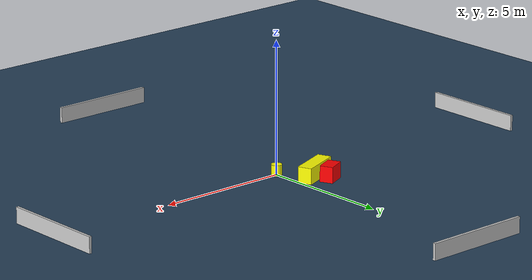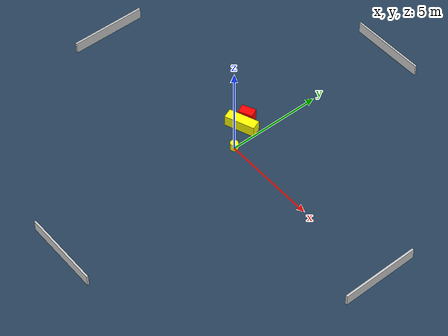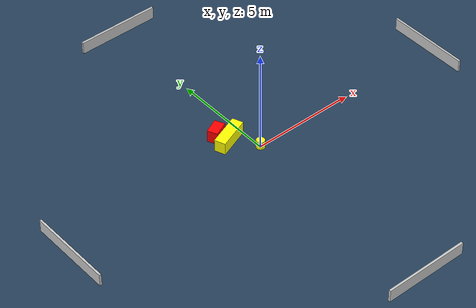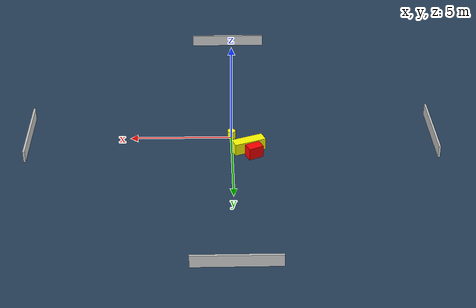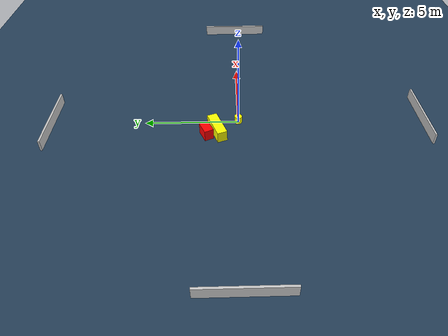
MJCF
<?xml version="1.0" ?>
<mujoco model="generated_environment">
  <option timestep="0.01" integrator="RK4" cone="elliptic"/>
  <default>
    <geom density="1"/>
  </default>
  <asset>
    <texture builtin="gradient" height="3072" name="skybox" rgb1="0.3 0.5 0.7" rgb2="0 0 0" type="skybox" width="512"/>
    <texture builtin="checker" height="300" name="groundplane" rgb1="0.2 0.3 0.4" rgb2="0.1 0.2 0.3" type="2d" width="300"/>
    <material name="groundplane" reflectance="0.2" texrepeat="5 5" texture="groundplane"/>
  </asset>
  <worldbody>
    <light dir="0 0 -1" directional="true" pos="0 0 1.5"/>
    <geom condim="3" friction="0.5 0.005 0.001" material="groundplane" name="floor" pos="0 0 0" size="0 0 0.05" type="plane"/>
    <body name="walls">
      <geom name="wall_1" condim="4" pos="-10.0 0.0 0.3" rgba="0.800000011920929 0.800000011920929 0.800000011920929 1.0" size="0.05 2.0 0.3" type="box"/>
      <geom name="wall_2" condim="4" pos="10.0 0.0 0.3" rgba="0.800000011920929 0.800000011920929 0.800000011920929 1.0" size="0.05 2.0 0.3" type="box"/>
      <geom name="wall_3" condim="4" pos="0.0 -10.0 0.3" rgba="0.800000011920929 0.800000011920929 0.800000011920929 1.0" size="2.0 0.05 0.3" type="box"/>
      <geom name="wall_4" condim="4" pos="0.0 10.0 0.3" rgba="0.800000011920929 0.800000011920929 0.800000011920929 1.0" size="2.0 0.05 0.3" type="box"/>
    </body>
    <body name="robot">
      <joint name="joint_x" type="slide" pos="0 0 0" axis="1 0 0"/>
      <joint name="joint_y" type="slide" pos="0 0 0" axis="0 1 0"/>
      <geom name="robot" type="cylinder" pos="0.0 0.0 0.2" size="0.2 0.2 0.0" mass="5.0" friction="1.0 0.005 0.0001" condim="4" rgba="1.0 1.0 0.0 1.0"/>
    </body>
    <body name="obstacle_1_movable">
      <geom name="obstacle_1_movable" condim="4" pos="-0.8051378856102885 1.1324403221799797 0.3" euler="0 0 110.9936866829888" friction="0.0 0.005 0.001" rgba="1.0 1.0 0.0 1.0" size="0.2635010091269043 0.7954374206382753 0.3" type="box" mass="0.1"/>
      <joint type="free"/>
    </body>
    <body name="obstacle_2_static">
      <geom name="obstacle_2_static" condim="4" pos="-1.0598209181569591 1.6833936038755744 0.3" euler="0 0 24.350066099588574" friction="0.0 0.005 0.001" rgba="1.0 0.0 0.0 1.0" size="0.3730405812127755 0.24633537038661527 0.3" type="box"/>
    </body>
  </worldbody>
  <actuator>
    <motor name="actuator_x" joint="joint_x" gear="1" ctrlrange="-1 1"/>
    <motor name="actuator_y" joint="joint_y" gear="1" ctrlrange="-1 1"/>
  </actuator>
</mujoco>
